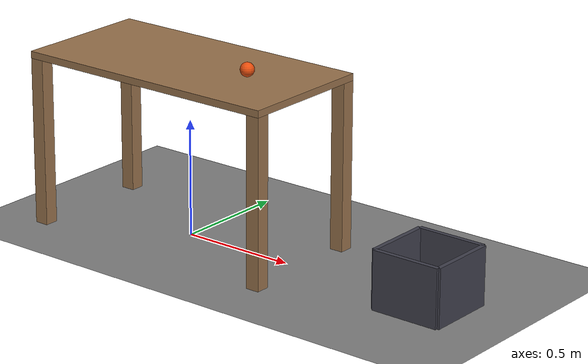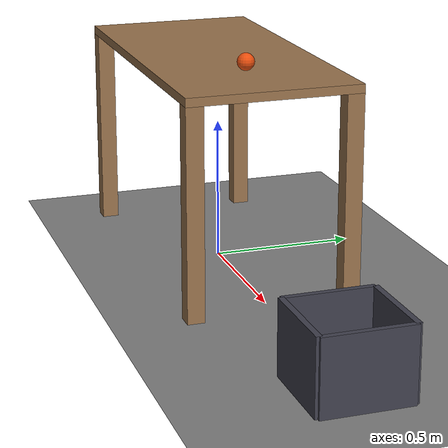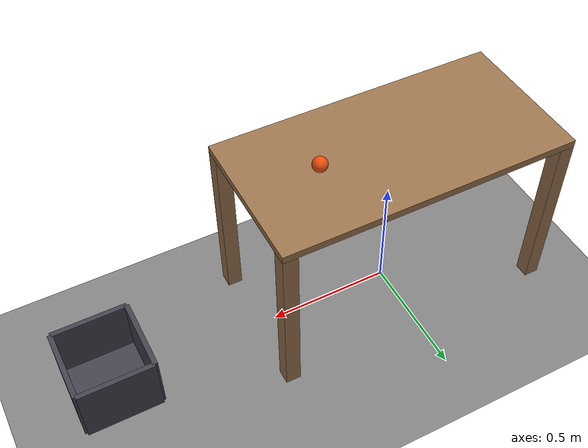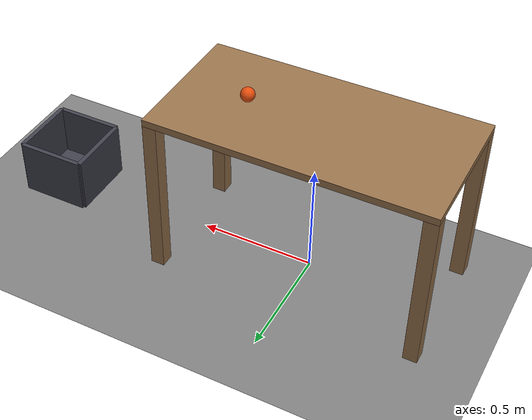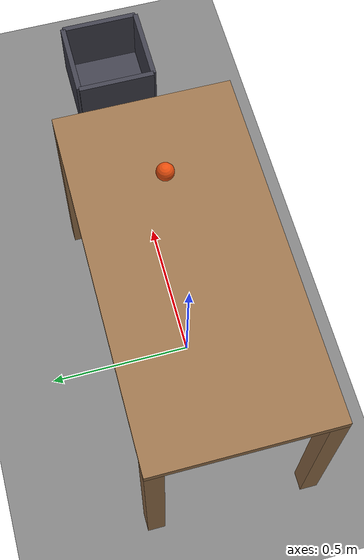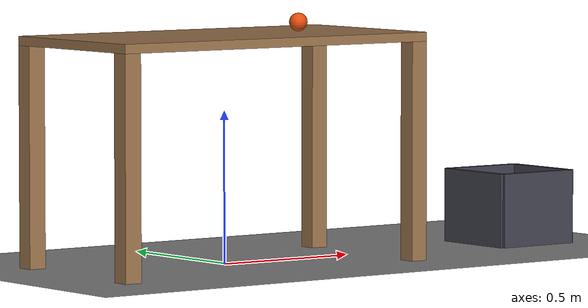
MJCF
<mujoco model="ball_rolls_off_a_table_into_a_bucket">
  <compiler angle="radian"/>
  <option timestep="0.002"/>
  <worldbody>
    <geom name="floor" type="plane" size="6 6 0.1" friction="0.8 0.005 0.002"/>
    <body name="table">
      <geom name="table_top" type="box" pos="0 0 0.735" size="0.6 0.3 0.015" friction="0.8 0.0001 0.0001" rgba="0.6 0.45 0.3 1"/>
      <geom name="table_near_left_leg" type="box" pos="-0.57 0.27 0.36" size="0.03 0.03 0.36" friction="0.8 0.0001 0.0001" rgba="0.6 0.45 0.3 1"/>
      <geom name="table_near_right_leg" type="box" pos="-0.57 -0.27 0.36" size="0.03 0.03 0.36" friction="0.8 0.0001 0.0001" rgba="0.6 0.45 0.3 1"/>
      <geom name="table_far_left_leg" type="box" pos="0.57 0.27 0.36" size="0.03 0.03 0.36" friction="0.8 0.0001 0.0001" rgba="0.6 0.45 0.3 1"/>
      <geom name="table_far_right_leg" type="box" pos="0.57 -0.27 0.36" size="0.03 0.03 0.36" friction="0.8 0.0001 0.0001" rgba="0.6 0.45 0.3 1"/>
    </body>
    <body name="bucket">
      <geom name="bucket_base" type="box" pos="1.2 0 0.01" size="0.15 0.15 0.01" friction="1 0.01 0.01" solref="0.01 1" rgba="0.25 0.25 0.3 1"/>
      <geom name="bucket_near_wall" type="box" pos="1.05 0 0.125" size="0.01 0.15 0.125" friction="1 0.01 0.01" solref="0.01 1" rgba="0.25 0.25 0.3 1"/>
      <geom name="bucket_far_wall" type="box" pos="1.35 0 0.125" size="0.01 0.15 0.125" friction="1 0.01 0.01" solref="0.01 1" rgba="0.25 0.25 0.3 1"/>
      <geom name="bucket_left_wall" type="box" pos="1.2 0.15 0.125" size="0.15 0.01 0.125" friction="1 0.01 0.01" solref="0.01 1" rgba="0.25 0.25 0.3 1"/>
      <geom name="bucket_right_wall" type="box" pos="1.2 -0.15 0.125" size="0.15 0.01 0.125" friction="1 0.01 0.01" solref="0.01 1" rgba="0.25 0.25 0.3 1"/>
    </body>
    <body name="ball" pos="0.3 0 0.78">
      <freejoint/>
      <geom name="ball" type="sphere" pos="0 0 0" size="0.03" mass="0.05" condim="6" friction="0.8 0.0001 0.0001" rgba="0.9 0.3 0.05 1"/>
    </body>
  </worldbody>
  <keyframe>
    <key name="start" qpos="0.3 0 0.78 1 0 0 0" qvel="1.55 0 0 0 51.7 0"/>
  </keyframe>
</mujoco>
